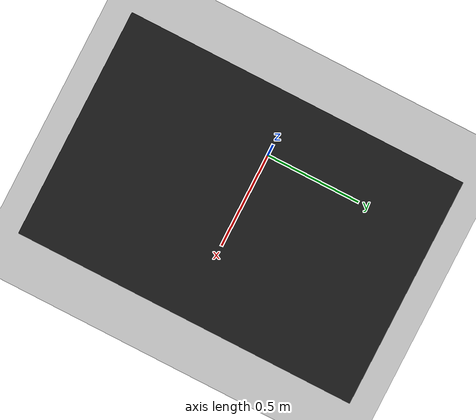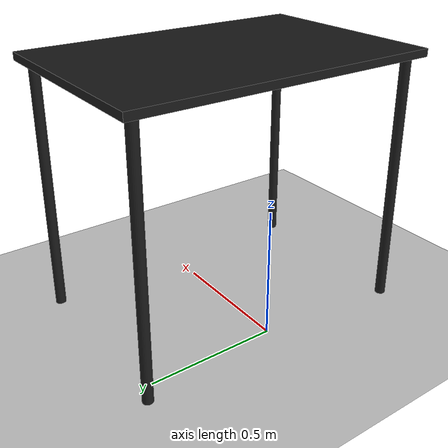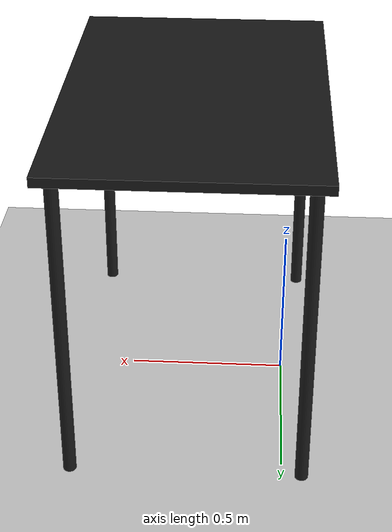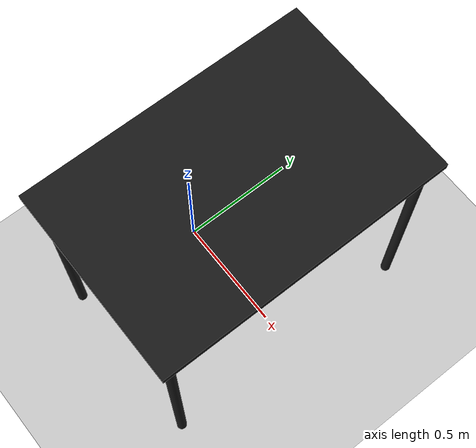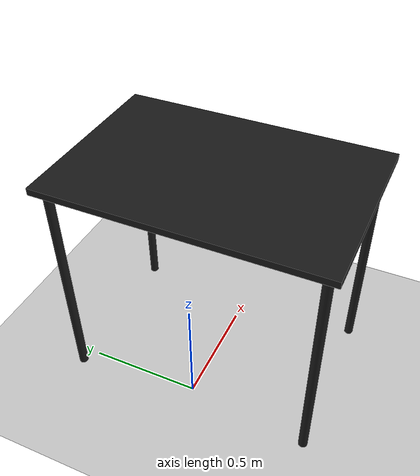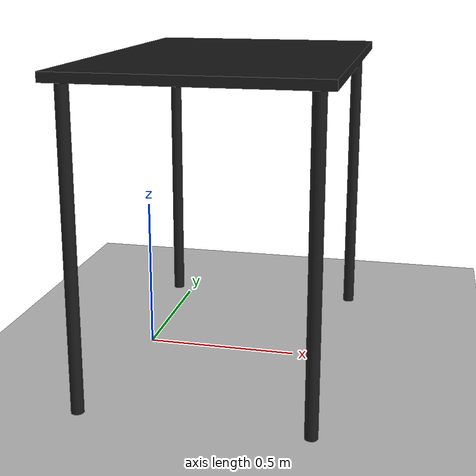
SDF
<?xml version="1.0" ?>
<sdf version="1.6">
  <world name="default">
    <physics name="1ms" type="ignored">
      <max_step_size>0.001</max_step_size>
      <real_time_factor>1.0</real_time_factor>
    </physics>
    <plugin
      filename="ignition-gazebo-physics-system"
      name="ignition::gazebo::systems::Physics">
    </plugin>
    <plugin
      filename="ignition-gazebo-user-commands-system"
      name="ignition::gazebo::systems::UserCommands">
    </plugin>
    <plugin
      filename="ignition-gazebo-scene-broadcaster-system"
      name="ignition::gazebo::systems::SceneBroadcaster">
    </plugin>
    <plugin
      filename="ignition-gazebo-sensors-system"
      name="ignition::gazebo::systems::Sensors">
      <render_engine>ogre2</render_engine>
    </plugin>

    <include>
      <uri>
        https://fuel.ignitionrobotics.org/1.0/OpenRobotics/models/Sun
      </uri>
    </include>

    <include>
      <uri>
        https://fuel.ignitionrobotics.org/1.0/OpenRobotics/models/Ground%20Plane
      </uri>
    </include>

    <!-- Black table for better color detection contrast -->
    <model name="black_table">
      <static>true</static>
      <pose>0.29 0 0 0 0 0</pose>
      <link name="table_top">
        <pose>0 0 1.0 0 0 0</pose>
        <collision name="collision">
          <geometry>
            <box>
              <size>0.8 1.2 0.03</size>
            </box>
          </geometry>
        </collision>
        <visual name="visual">
          <geometry>
            <box>
              <size>0.8 1.2 0.03</size>
            </box>
          </geometry>
          <material>
            <ambient>0.1 0.1 0.1 1</ambient>
            <diffuse>0.1 0.1 0.1 1</diffuse>
            <specular>0.2 0.2 0.2 1</specular>
          </material>
        </visual>
      </link>
      <link name="leg1">
        <pose>0.35 0.55 0.5 0 0 0</pose>
        <collision name="collision"><geometry><cylinder><radius>0.02</radius><length>1.0</length></cylinder></geometry></collision>
        <visual name="visual"><geometry><cylinder><radius>0.02</radius><length>1.0</length></cylinder></geometry>
          <material><ambient>0.1 0.1 0.1 1</ambient><diffuse>0.1 0.1 0.1 1</diffuse></material>
        </visual>
      </link>
      <link name="leg2">
        <pose>0.35 -0.55 0.5 0 0 0</pose>
        <collision name="collision"><geometry><cylinder><radius>0.02</radius><length>1.0</length></cylinder></geometry></collision>
        <visual name="visual"><geometry><cylinder><radius>0.02</radius><length>1.0</length></cylinder></geometry>
          <material><ambient>0.1 0.1 0.1 1</ambient><diffuse>0.1 0.1 0.1 1</diffuse></material>
        </visual>
      </link>
      <link name="leg3">
        <pose>-0.35 0.55 0.5 0 0 0</pose>
        <collision name="collision"><geometry><cylinder><radius>0.02</radius><length>1.0</length></cylinder></geometry></collision>
        <visual name="visual"><geometry><cylinder><radius>0.02</radius><length>1.0</length></cylinder></geometry>
          <material><ambient>0.1 0.1 0.1 1</ambient><diffuse>0.1 0.1 0.1 1</diffuse></material>
        </visual>
      </link>
      <link name="leg4">
        <pose>-0.35 -0.55 0.5 0 0 0</pose>
        <collision name="collision"><geometry><cylinder><radius>0.02</radius><length>1.0</length></cylinder></geometry></collision>
        <visual name="visual"><geometry><cylinder><radius>0.02</radius><length>1.0</length></cylinder></geometry>
          <material><ambient>0.1 0.1 0.1 1</ambient><diffuse>0.1 0.1 0.1 1</diffuse></material>
        </visual>
      </link>
    </model>

  </world>
</sdf>
